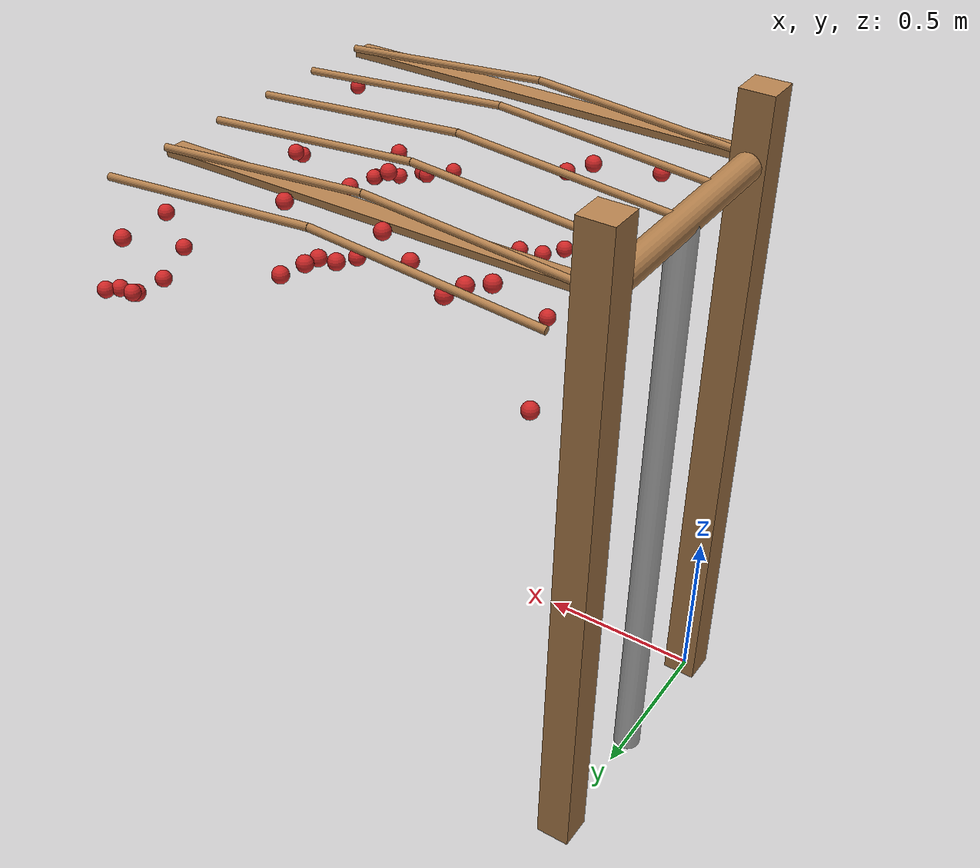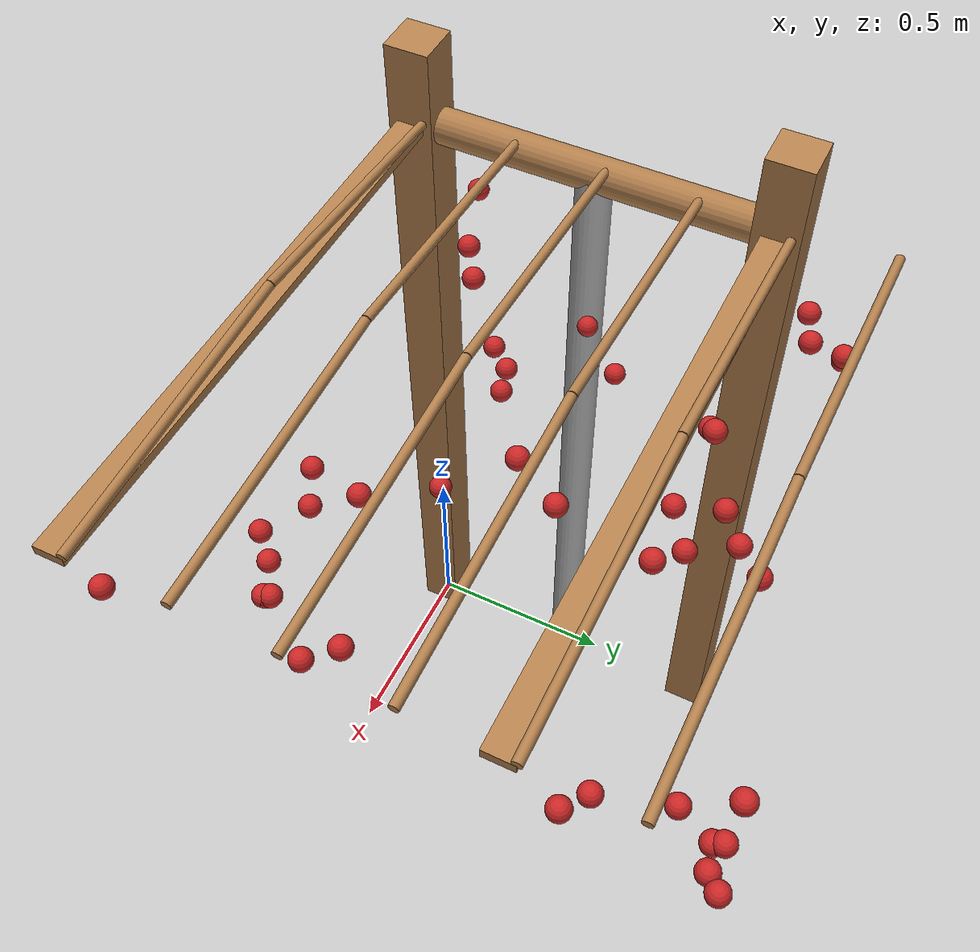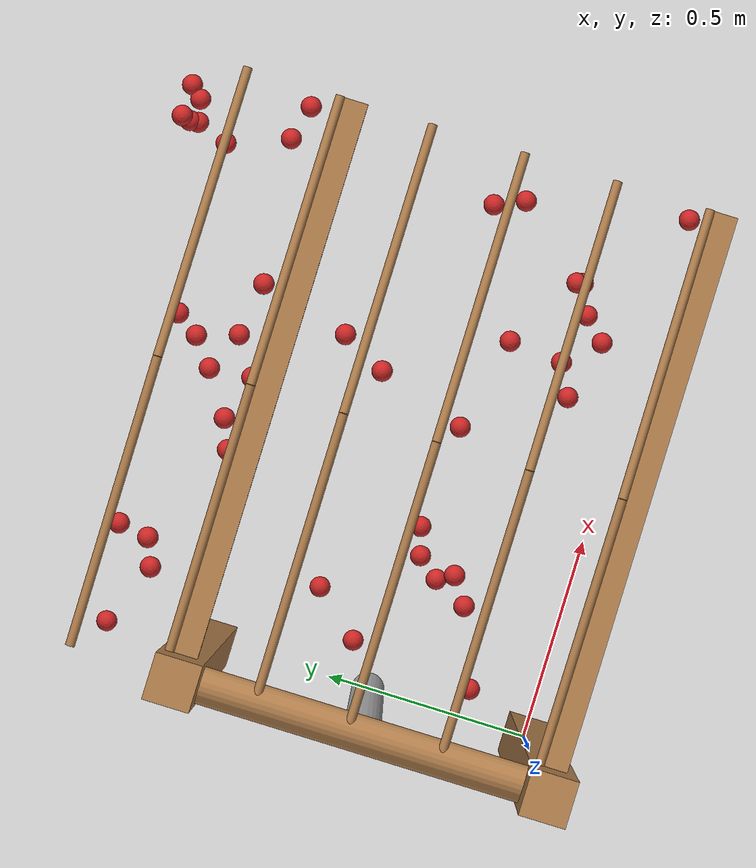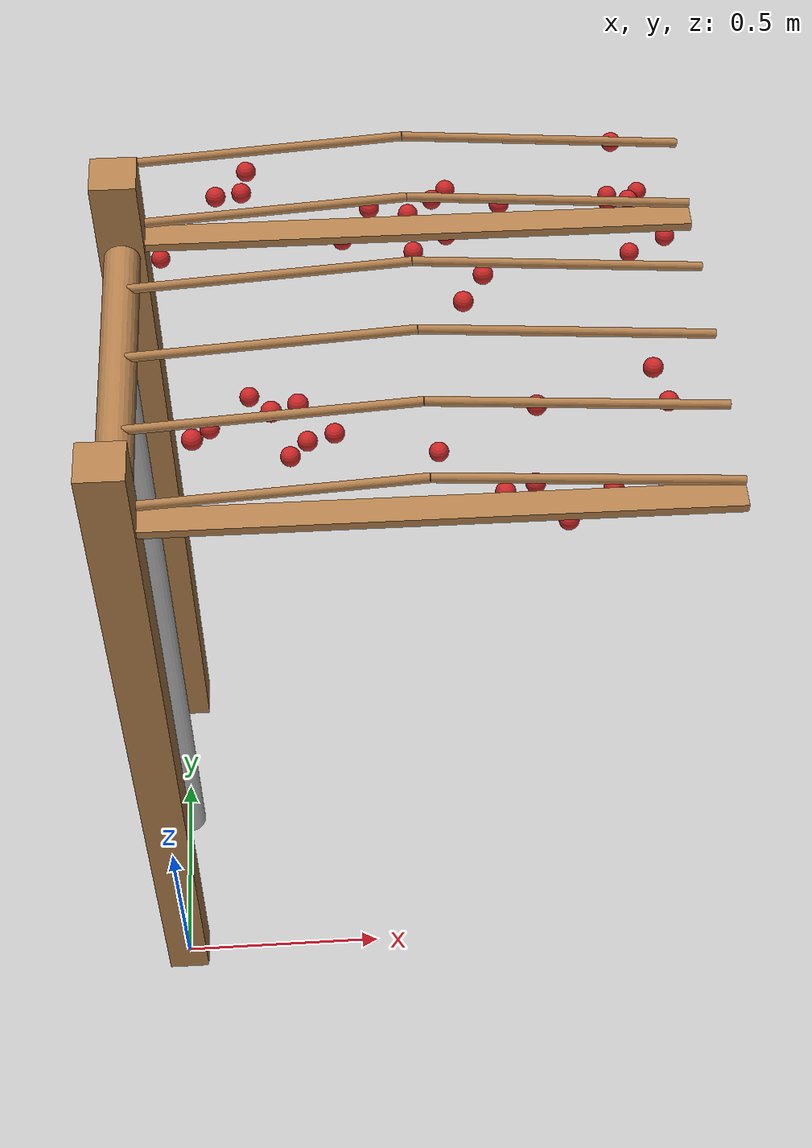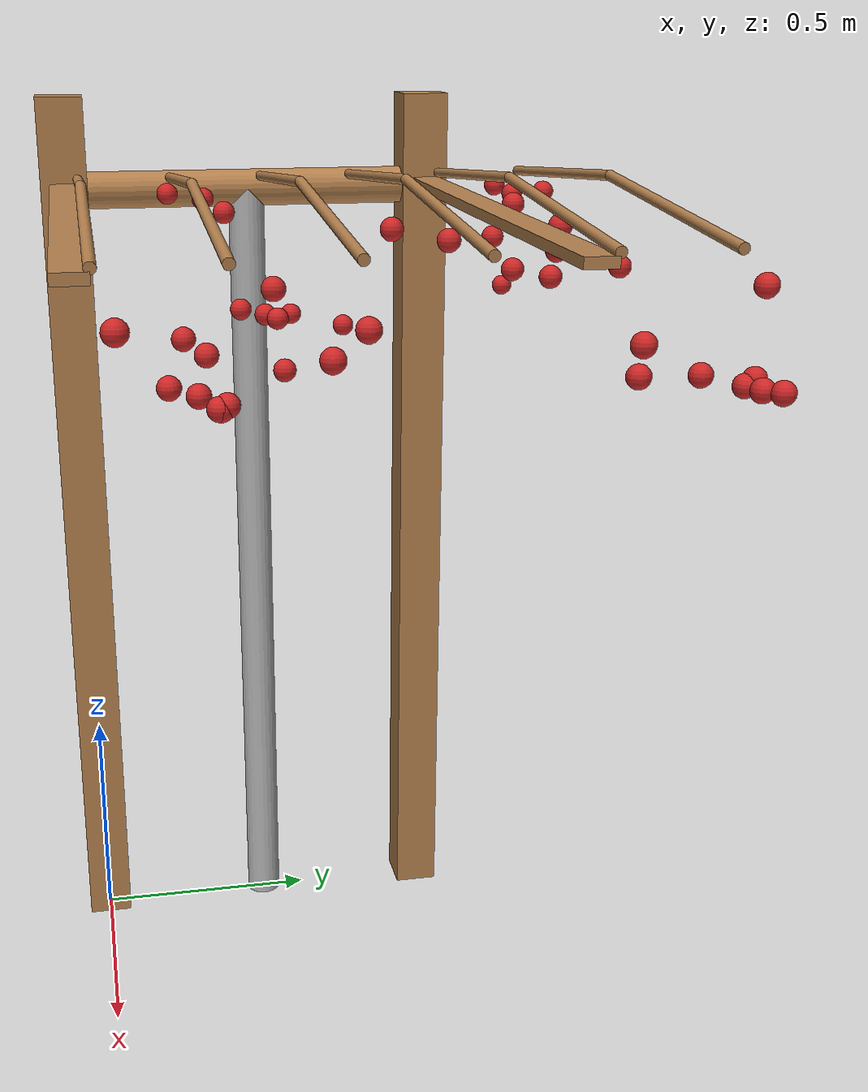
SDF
<sdf version="1.4">
 <model name="pergola">
  <include><name>post_0</name><uri>model://post</uri></include>
  <include><name>post_1</name><pose>0.0 0.8 0 0 0 0</pose><uri>model://post</uri></include>
  <link name="beam_0">
   <pose>0.625 0.0 1.81 0 0 0</pose>
   <collision name="collision"><geometry><box><size>1.25 0.06 0.02</size></box></geometry></collision>
   <visual name="visual">
    <geometry><box><size>1.25 0.06 0.02</size></box></geometry>
    <material><script><name>Gazebo/Wood</name></script></material>
   </visual>
   <inertial>
    <mass>5</mass>
    <inertia>
     <ixx>0.0016666666666666668</ixx>
     <ixy>0.0</ixy>
     <ixz>0.0</ixz>
     <iyy>0.6525416666666667</iyy>
     <iyz>0.0</iyz>
     <izz>0.6512083333333333</izz>
    </inertia>
   </inertial>
  </link>
  <link name="beam_1">
   <pose>0.625 0.8 1.81 0 0 0</pose>
   <collision name="collision"><geometry><box><size>1.25 0.06 0.02</size></box></geometry></collision>
   <visual name="visual">
    <geometry><box><size>1.25 0.06 0.02</size></box></geometry>
    <material><script><name>Gazebo/Wood</name></script></material>
   </visual>
   <inertial>
    <mass>5</mass>
    <inertia>
     <ixx>0.0016666666666666668</ixx>
     <ixy>0.0</ixy>
     <ixz>0.0</ixz>
     <iyy>0.6525416666666667</iyy>
     <iyz>0.0</iyz>
     <izz>0.6512083333333333</izz>
    </inertia>
   </inertial>
  </link>
  <include><name>tree_0</name><pose>0.0 0.4 0 0 0 0</pose><uri>model://tree_trunk</uri></include>
  <link name="baseBranch_0">
   <pose>0.0 0.4 1.8 1.5707963267948966 0 0</pose>
   <collision name="collision">
    <geometry><cylinder><radius>0.04</radius><length>0.74</length></cylinder></geometry>
   </collision>
   <visual name="visual">
    <geometry><cylinder><radius>0.04</radius><length>0.74</length></cylinder></geometry>
    <material><script><name>Gazebo/WoodFloor</name></script></material>
   </visual>
   <inertial>
    <mass>10</mass>
    <inertia>
     <ixx>0.4603333333333333</ixx>
     <ixy>0.0</ixy>
     <ixz>0.0</ixz>
     <iyy>0.4603333333333333</iyy>
     <iyz>0.0</iyz>
     <izz>0.008</izz>
    </inertia>
   </inertial>
  </link>
  <link name="vine_0">
   <pose>0.3125 0.03 1.85 0 1.4909663410826592 0</pose>
   <collision name="collision">
    <geometry><cylinder><radius>0.01</radius><length>0.6269968101992226</length></cylinder></geometry>
   </collision>
   <visual name="visual">
    <geometry><cylinder><radius>0.01</radius><length>0.6269968101992226</length></cylinder></geometry>
    <material><script><name>Gazebo/WoodFloor</name></script></material>
   </visual>
   <inertial>
    <mass>5</mass>
    <inertia>
     <ixx>0.1639270833333333</ixx>
     <ixy>0.0</ixy>
     <ixz>0.0</ixz>
     <iyy>0.1639270833333333</iyy>
     <iyz>0.0</iyz>
     <izz>0.00025</izz>
    </inertia>
   </inertial>
  </link>
  <link name="vine_1">
   <pose>0.9375 0.03 1.85 0 -1.4909663410826592 0</pose>
   <collision name="collision">
    <geometry><cylinder><radius>0.01</radius><length>0.6269968101992226</length></cylinder></geometry>
   </collision>
   <visual name="visual">
    <geometry><cylinder><radius>0.01</radius><length>0.6269968101992226</length></cylinder></geometry>
    <material><script><name>Gazebo/WoodFloor</name></script></material>
   </visual>
   <inertial>
    <mass>5</mass>
    <inertia>
     <ixx>0.1639270833333333</ixx>
     <ixy>0.0</ixy>
     <ixz>0.0</ixz>
     <iyy>0.1639270833333333</iyy>
     <iyz>0.0</iyz>
     <izz>0.00025</izz>
    </inertia>
   </inertial>
  </link>
  <link name="vine_2">
   <pose>0.3125 0.23 1.85 0 1.4909663410826592 0</pose>
   <collision name="collision">
    <geometry><cylinder><radius>0.01</radius><length>0.6269968101992226</length></cylinder></geometry>
   </collision>
   <visual name="visual">
    <geometry><cylinder><radius>0.01</radius><length>0.6269968101992226</length></cylinder></geometry>
    <material><script><name>Gazebo/WoodFloor</name></script></material>
   </visual>
   <inertial>
    <mass>5</mass>
    <inertia>
     <ixx>0.1639270833333333</ixx>
     <ixy>0.0</ixy>
     <ixz>0.0</ixz>
     <iyy>0.1639270833333333</iyy>
     <iyz>0.0</iyz>
     <izz>0.00025</izz>
    </inertia>
   </inertial>
  </link>
  <link name="vine_3">
   <pose>0.9375 0.23 1.85 0 -1.4909663410826592 0</pose>
   <collision name="collision">
    <geometry><cylinder><radius>0.01</radius><length>0.6269968101992226</length></cylinder></geometry>
   </collision>
   <visual name="visual">
    <geometry><cylinder><radius>0.01</radius><length>0.6269968101992226</length></cylinder></geometry>
    <material><script><name>Gazebo/WoodFloor</name></script></material>
   </visual>
   <inertial>
    <mass>5</mass>
    <inertia>
     <ixx>0.1639270833333333</ixx>
     <ixy>0.0</ixy>
     <ixz>0.0</ixz>
     <iyy>0.1639270833333333</iyy>
     <iyz>0.0</iyz>
     <izz>0.00025</izz>
    </inertia>
   </inertial>
  </link>
  <link name="vine_4">
   <pose>0.3125 0.43000000000000005 1.85 0 1.4909663410826592 0</pose>
   <collision name="collision">
    <geometry><cylinder><radius>0.01</radius><length>0.6269968101992226</length></cylinder></geometry>
   </collision>
   <visual name="visual">
    <geometry><cylinder><radius>0.01</radius><length>0.6269968101992226</length></cylinder></geometry>
    <material><script><name>Gazebo/WoodFloor</name></script></material>
   </visual>
   <inertial>
    <mass>5</mass>
    <inertia>
     <ixx>0.1639270833333333</ixx>
     <ixy>0.0</ixy>
     <ixz>0.0</ixz>
     <iyy>0.1639270833333333</iyy>
     <iyz>0.0</iyz>
     <izz>0.00025</izz>
    </inertia>
   </inertial>
  </link>
  <link name="vine_5">
   <pose>0.9375 0.43000000000000005 1.85 0 -1.4909663410826592 0</pose>
   <collision name="collision">
    <geometry><cylinder><radius>0.01</radius><length>0.6269968101992226</length></cylinder></geometry>
   </collision>
   <visual name="visual">
    <geometry><cylinder><radius>0.01</radius><length>0.6269968101992226</length></cylinder></geometry>
    <material><script><name>Gazebo/WoodFloor</name></script></material>
   </visual>
   <inertial>
    <mass>5</mass>
    <inertia>
     <ixx>0.1639270833333333</ixx>
     <ixy>0.0</ixy>
     <ixz>0.0</ixz>
     <iyy>0.1639270833333333</iyy>
     <iyz>0.0</iyz>
     <izz>0.00025</izz>
    </inertia>
   </inertial>
  </link>
  <link name="vine_6">
   <pose>0.3125 0.6300000000000001 1.85 0 1.4909663410826592 0</pose>
   <collision name="collision">
    <geometry><cylinder><radius>0.01</radius><length>0.6269968101992226</length></cylinder></geometry>
   </collision>
   <visual name="visual">
    <geometry><cylinder><radius>0.01</radius><length>0.6269968101992226</length></cylinder></geometry>
    <material><script><name>Gazebo/WoodFloor</name></script></material>
   </visual>
   <inertial>
    <mass>5</mass>
    <inertia>
     <ixx>0.1639270833333333</ixx>
     <ixy>0.0</ixy>
     <ixz>0.0</ixz>
     <iyy>0.1639270833333333</iyy>
     <iyz>0.0</iyz>
     <izz>0.00025</izz>
    </inertia>
   </inertial>
  </link>
  <link name="vine_7">
   <pose>0.9375 0.6300000000000001 1.85 0 -1.4909663410826592 0</pose>
   <collision name="collision">
    <geometry><cylinder><radius>0.01</radius><length>0.6269968101992226</length></cylinder></geometry>
   </collision>
   <visual name="visual">
    <geometry><cylinder><radius>0.01</radius><length>0.6269968101992226</length></cylinder></geometry>
    <material><script><name>Gazebo/WoodFloor</name></script></material>
   </visual>
   <inertial>
    <mass>5</mass>
    <inertia>
     <ixx>0.1639270833333333</ixx>
     <ixy>0.0</ixy>
     <ixz>0.0</ixz>
     <iyy>0.1639270833333333</iyy>
     <iyz>0.0</iyz>
     <izz>0.00025</izz>
    </inertia>
   </inertial>
  </link>
  <link name="vine_8">
   <pose>0.3125 0.8300000000000001 1.85 0 1.4909663410826592 0</pose>
   <collision name="collision">
    <geometry><cylinder><radius>0.01</radius><length>0.6269968101992226</length></cylinder></geometry>
   </collision>
   <visual name="visual">
    <geometry><cylinder><radius>0.01</radius><length>0.6269968101992226</length></cylinder></geometry>
    <material><script><name>Gazebo/WoodFloor</name></script></material>
   </visual>
   <inertial>
    <mass>5</mass>
    <inertia>
     <ixx>0.1639270833333333</ixx>
     <ixy>0.0</ixy>
     <ixz>0.0</ixz>
     <iyy>0.1639270833333333</iyy>
     <iyz>0.0</iyz>
     <izz>0.00025</izz>
    </inertia>
   </inertial>
  </link>
  <link name="vine_9">
   <pose>0.9375 0.8300000000000001 1.85 0 -1.4909663410826592 0</pose>
   <collision name="collision">
    <geometry><cylinder><radius>0.01</radius><length>0.6269968101992226</length></cylinder></geometry>
   </collision>
   <visual name="visual">
    <geometry><cylinder><radius>0.01</radius><length>0.6269968101992226</length></cylinder></geometry>
    <material><script><name>Gazebo/WoodFloor</name></script></material>
   </visual>
   <inertial>
    <mass>5</mass>
    <inertia>
     <ixx>0.1639270833333333</ixx>
     <ixy>0.0</ixy>
     <ixz>0.0</ixz>
     <iyy>0.1639270833333333</iyy>
     <iyz>0.0</iyz>
     <izz>0.00025</izz>
    </inertia>
   </inertial>
  </link>
  <link name="vine_10">
   <pose>0.3125 1.03 1.85 0 1.4909663410826592 0</pose>
   <collision name="collision">
    <geometry><cylinder><radius>0.01</radius><length>0.6269968101992226</length></cylinder></geometry>
   </collision>
   <visual name="visual">
    <geometry><cylinder><radius>0.01</radius><length>0.6269968101992226</length></cylinder></geometry>
    <material><script><name>Gazebo/WoodFloor</name></script></material>
   </visual>
   <inertial>
    <mass>5</mass>
    <inertia>
     <ixx>0.1639270833333333</ixx>
     <ixy>0.0</ixy>
     <ixz>0.0</ixz>
     <iyy>0.1639270833333333</iyy>
     <iyz>0.0</iyz>
     <izz>0.00025</izz>
    </inertia>
   </inertial>
  </link>
  <link name="vine_11">
   <pose>0.9375 1.03 1.85 0 -1.4909663410826592 0</pose>
   <collision name="collision">
    <geometry><cylinder><radius>0.01</radius><length>0.6269968101992226</length></cylinder></geometry>
   </collision>
   <visual name="visual">
    <geometry><cylinder><radius>0.01</radius><length>0.6269968101992226</length></cylinder></geometry>
    <material><script><name>Gazebo/WoodFloor</name></script></material>
   </visual>
   <inertial>
    <mass>5</mass>
    <inertia>
     <ixx>0.1639270833333333</ixx>
     <ixy>0.0</ixy>
     <ixz>0.0</ixz>
     <iyy>0.1639270833333333</iyy>
     <iyz>0.0</iyz>
     <izz>0.00025</izz>
    </inertia>
   </inertial>
  </link>
  <link name="fruit_5">
   <pose>0.1707817436711813 0.4731535679665953 1.5445469645437917 0 0 0</pose>
   <collision name="fruit_collision_5"><geometry><sphere><radius>0.022</radius></sphere></geometry></collision>
   <visual name="visual">
    <geometry><sphere><radius>0.022</radius></sphere></geometry>
    <material><script><name>Gazebo/Red</name></script></material>
   </visual>
   <inertial>
    <mass>0.05</mass>
    <inertia>
     <ixx>9.679999999999999e-06</ixx>
     <ixy>0.0</ixy>
     <ixz>0.0</ixz>
     <iyy>9.679999999999999e-06</iyy>
     <iyz>0.0</iyz>
     <izz>9.679999999999999e-06</izz>
    </inertia>
   </inertial>
   <sensor name="fruit_contact_5" type="contact">
    <plugin name="contact_plugin_5" filename="libcontact_plugin.so"/>
    <contact><collision>fruit_collision_5</collision><topic>fruit_contact_topic_5</topic></contact>
   </sensor>
  </link>
  <link name="fruit_10">
   <pose>0.6332576587366734 0.9271785815421214 1.7356084029133274 0 0 0</pose>
   <collision name="fruit_collision_10"><geometry><sphere><radius>0.022</radius></sphere></geometry></collision>
   <visual name="visual">
    <geometry><sphere><radius>0.022</radius></sphere></geometry>
    <material><script><name>Gazebo/Red</name></script></material>
   </visual>
   <inertial>
    <mass>0.05</mass>
    <inertia>
     <ixx>9.679999999999999e-06</ixx>
     <ixy>0.0</ixy>
     <ixz>0.0</ixz>
     <iyy>9.679999999999999e-06</iyy>
     <iyz>0.0</iyz>
     <izz>9.679999999999999e-06</izz>
    </inertia>
   </inertial>
   <sensor name="fruit_contact_10" type="contact">
    <plugin name="contact_plugin_10" filename="libcontact_plugin.so"/>
    <contact><collision>fruit_collision_10</collision><topic>fruit_contact_topic_10</topic></contact>
   </sensor>
  </link>
  <link name="fruit_29">
   <pose>0.3168533076749783 0.2753258326980976 1.8124204976361395 0 0 0</pose>
   <collision name="fruit_collision_29"><geometry><sphere><radius>0.022</radius></sphere></geometry></collision>
   <visual name="visual">
    <geometry><sphere><radius>0.022</radius></sphere></geometry>
    <material><script><name>Gazebo/Red</name></script></material>
   </visual>
   <inertial>
    <mass>0.05</mass>
    <inertia>
     <ixx>9.679999999999999e-06</ixx>
     <ixy>0.0</ixy>
     <ixz>0.0</ixz>
     <iyy>9.679999999999999e-06</iyy>
     <iyz>0.0</iyz>
     <izz>9.679999999999999e-06</izz>
    </inertia>
   </inertial>
   <sensor name="fruit_contact_29" type="contact">
    <plugin name="contact_plugin_29" filename="libcontact_plugin.so"/>
    <contact><collision>fruit_collision_29</collision><topic>fruit_contact_topic_29</topic></contact>
   </sensor>
  </link>
  <link name="fruit_39">
   <pose>1.1355575653241217 0.46005277433909364 1.6968575960692807 0 0 0</pose>
   <collision name="fruit_collision_39"><geometry><sphere><radius>0.022</radius></sphere></geometry></collision>
   <visual name="visual">
    <geometry><sphere><radius>0.022</radius></sphere></geometry>
    <material><script><name>Gazebo/Red</name></script></material>
   </visual>
   <inertial>
    <mass>0.05</mass>
    <inertia>
     <ixx>9.679999999999999e-06</ixx>
     <ixy>0.0</ixy>
     <ixz>0.0</ixz>
     <iyy>9.679999999999999e-06</iyy>
     <iyz>0.0</iyz>
     <izz>9.679999999999999e-06</izz>
    </inertia>
   </inertial>
   <sensor name="fruit_contact_39" type="contact">
    <plugin name="contact_plugin_39" filename="libcontact_plugin.so"/>
    <contact><collision>fruit_collision_39</collision><topic>fruit_contact_topic_39</topic></contact>
   </sensor>
  </link>
  <link name="fruit_40">
   <pose>0.7324153318432257 0.5808219271677135 1.798291851647477 0 0 0</pose>
   <collision name="fruit_collision_40"><geometry><sphere><radius>0.022</radius></sphere></geometry></collision>
   <visual name="visual">
    <geometry><sphere><radius>0.022</radius></sphere></geometry>
    <material><script><name>Gazebo/Red</name></script></material>
   </visual>
   <inertial>
    <mass>0.05</mass>
    <inertia>
     <ixx>9.679999999999999e-06</ixx>
     <ixy>0.0</ixy>
     <ixz>0.0</ixz>
     <iyy>9.679999999999999e-06</iyy>
     <iyz>0.0</iyz>
     <izz>9.679999999999999e-06</izz>
    </inertia>
   </inertial>
   <sensor name="fruit_contact_40" type="contact">
    <plugin name="contact_plugin_40" filename="libcontact_plugin.so"/>
    <contact><collision>fruit_collision_40</collision><topic>fruit_contact_topic_40</topic></contact>
   </sensor>
  </link>
  <link name="fruit_59">
   <pose>0.2039706118237588 0.9193554298494175 1.8159032775108537 0 0 0</pose>
   <collision name="fruit_collision_59"><geometry><sphere><radius>0.022</radius></sphere></geometry></collision>
   <visual name="visual">
    <geometry><sphere><radius>0.022</radius></sphere></geometry>
    <material><script><name>Gazebo/Red</name></script></material>
   </visual>
   <inertial>
    <mass>0.05</mass>
    <inertia>
     <ixx>9.679999999999999e-06</ixx>
     <ixy>0.0</ixy>
     <ixz>0.0</ixz>
     <iyy>9.679999999999999e-06</iyy>
     <iyz>0.0</iyz>
     <izz>9.679999999999999e-06</izz>
    </inertia>
   </inertial>
   <sensor name="fruit_contact_59" type="contact">
    <plugin name="contact_plugin_59" filename="libcontact_plugin.so"/>
    <contact><collision>fruit_collision_59</collision><topic>fruit_contact_topic_59</topic></contact>
   </sensor>
  </link>
  <link name="fruit_73">
   <pose>0.15596058516285088 0.21432575772232704 1.8065081721348228 0 0 0</pose>
   <collision name="fruit_collision_73"><geometry><sphere><radius>0.022</radius></sphere></geometry></collision>
   <visual name="visual">
    <geometry><sphere><radius>0.022</radius></sphere></geometry>
    <material><script><name>Gazebo/Red</name></script></material>
   </visual>
   <inertial>
    <mass>0.05</mass>
    <inertia>
     <ixx>9.679999999999999e-06</ixx>
     <ixy>0.0</ixy>
     <ixz>0.0</ixz>
     <iyy>9.679999999999999e-06</iyy>
     <iyz>0.0</iyz>
     <izz>9.679999999999999e-06</izz>
    </inertia>
   </inertial>
   <sensor name="fruit_contact_73" type="contact">
    <plugin name="contact_plugin_73" filename="libcontact_plugin.so"/>
    <contact><collision>fruit_collision_73</collision><topic>fruit_contact_topic_73</topic></contact>
   </sensor>
  </link>
  <link name="fruit_119">
   <pose>1.1477046238757647 0.9101591536227673 1.6049553665391931 0 0 0</pose>
   <collision name="fruit_collision_119"><geometry><sphere><radius>0.022</radius></sphere></geometry></collision>
   <visual name="visual">
    <geometry><sphere><radius>0.022</radius></sphere></geometry>
    <material><script><name>Gazebo/Red</name></script></material>
   </visual>
   <inertial>
    <mass>0.05</mass>
    <inertia>
     <ixx>9.679999999999999e-06</ixx>
     <ixy>0.0</ixy>
     <ixz>0.0</ixz>
     <iyy>9.679999999999999e-06</iyy>
     <iyz>0.0</iyz>
     <izz>9.679999999999999e-06</izz>
    </inertia>
   </inertial>
   <sensor name="fruit_contact_119" type="contact">
    <plugin name="contact_plugin_119" filename="libcontact_plugin.so"/>
    <contact><collision>fruit_collision_119</collision><topic>fruit_contact_topic_119</topic></contact>
   </sensor>
  </link>
  <link name="fruit_121">
   <pose>0.6710022559961407 0.3888139581941285 1.5322242792933252 0 0 0</pose>
   <collision name="fruit_collision_121"><geometry><sphere><radius>0.022</radius></sphere></geometry></collision>
   <visual name="visual">
    <geometry><sphere><radius>0.022</radius></sphere></geometry>
    <material><script><name>Gazebo/Red</name></script></material>
   </visual>
   <inertial>
    <mass>0.05</mass>
    <inertia>
     <ixx>9.679999999999999e-06</ixx>
     <ixy>0.0</ixy>
     <ixz>0.0</ixz>
     <iyy>9.679999999999999e-06</iyy>
     <iyz>0.0</iyz>
     <izz>9.679999999999999e-06</izz>
    </inertia>
   </inertial>
   <sensor name="fruit_contact_121" type="contact">
    <plugin name="contact_plugin_121" filename="libcontact_plugin.so"/>
    <contact><collision>fruit_collision_121</collision><topic>fruit_contact_topic_121</topic></contact>
   </sensor>
  </link>
  <link name="fruit_135">
   <pose>0.8715903221568378 0.343914989573875 1.7212491495996867 0 0 0</pose>
   <collision name="fruit_collision_135"><geometry><sphere><radius>0.022</radius></sphere></geometry></collision>
   <visual name="visual">
    <geometry><sphere><radius>0.022</radius></sphere></geometry>
    <material><script><name>Gazebo/Red</name></script></material>
   </visual>
   <inertial>
    <mass>0.05</mass>
    <inertia>
     <ixx>9.679999999999999e-06</ixx>
     <ixy>0.0</ixy>
     <ixz>0.0</ixz>
     <iyy>9.679999999999999e-06</iyy>
     <iyz>0.0</iyz>
     <izz>9.679999999999999e-06</izz>
    </inertia>
   </inertial>
   <sensor name="fruit_contact_135" type="contact">
    <plugin name="contact_plugin_135" filename="libcontact_plugin.so"/>
    <contact><collision>fruit_collision_135</collision><topic>fruit_contact_topic_135</topic></contact>
   </sensor>
  </link>
  <link name="fruit_140">
   <pose>1.2203867815258627 0.8870780342889328 1.6737760473049563 0 0 0</pose>
   <collision name="fruit_collision_140"><geometry><sphere><radius>0.022</radius></sphere></geometry></collision>
   <visual name="visual">
    <geometry><sphere><radius>0.022</radius></sphere></geometry>
    <material><script><name>Gazebo/Red</name></script></material>
   </visual>
   <inertial>
    <mass>0.05</mass>
    <inertia>
     <ixx>9.679999999999999e-06</ixx>
     <ixy>0.0</ixy>
     <ixz>0.0</ixz>
     <iyy>9.679999999999999e-06</iyy>
     <iyz>0.0</iyz>
     <izz>9.679999999999999e-06</izz>
    </inertia>
   </inertial>
   <sensor name="fruit_contact_140" type="contact">
    <plugin name="contact_plugin_140" filename="libcontact_plugin.so"/>
    <contact><collision>fruit_collision_140</collision><topic>fruit_contact_topic_140</topic></contact>
   </sensor>
  </link>
  <link name="fruit_147">
   <pose>0.48164694977848554 0.8405772228152197 1.7444852395901955 0 0 0</pose>
   <collision name="fruit_collision_147"><geometry><sphere><radius>0.022</radius></sphere></geometry></collision>
   <visual name="visual">
    <geometry><sphere><radius>0.022</radius></sphere></geometry>
    <material><script><name>Gazebo/Red</name></script></material>
   </visual>
   <inertial>
    <mass>0.05</mass>
    <inertia>
     <ixx>9.679999999999999e-06</ixx>
     <ixy>0.0</ixy>
     <ixz>0.0</ixz>
     <iyy>9.679999999999999e-06</iyy>
     <iyz>0.0</iyz>
     <izz>9.679999999999999e-06</izz>
    </inertia>
   </inertial>
   <sensor name="fruit_contact_147" type="contact">
    <plugin name="contact_plugin_147" filename="libcontact_plugin.so"/>
    <contact><collision>fruit_collision_147</collision><topic>fruit_contact_topic_147</topic></contact>
   </sensor>
  </link>
  <link name="fruit_158">
   <pose>1.1198200772964726 1.135760847248829 1.7432563470359226 0 0 0</pose>
   <collision name="fruit_collision_158"><geometry><sphere><radius>0.022</radius></sphere></geometry></collision>
   <visual name="visual">
    <geometry><sphere><radius>0.022</radius></sphere></geometry>
    <material><script><name>Gazebo/Red</name></script></material>
   </visual>
   <inertial>
    <mass>0.05</mass>
    <inertia>
     <ixx>9.679999999999999e-06</ixx>
     <ixy>0.0</ixy>
     <ixz>0.0</ixz>
     <iyy>9.679999999999999e-06</iyy>
     <iyz>0.0</iyz>
     <izz>9.679999999999999e-06</izz>
    </inertia>
   </inertial>
   <sensor name="fruit_contact_158" type="contact">
    <plugin name="contact_plugin_158" filename="libcontact_plugin.so"/>
    <contact><collision>fruit_collision_158</collision><topic>fruit_contact_topic_158</topic></contact>
   </sensor>
  </link>
  <link name="fruit_166">
   <pose>0.7965862019879061 0.1913778665107756 1.6245318593907465 0 0 0</pose>
   <collision name="fruit_collision_166"><geometry><sphere><radius>0.022</radius></sphere></geometry></collision>
   <visual name="visual">
    <geometry><sphere><radius>0.022</radius></sphere></geometry>
    <material><script><name>Gazebo/Red</name></script></material>
   </visual>
   <inertial>
    <mass>0.05</mass>
    <inertia>
     <ixx>9.679999999999999e-06</ixx>
     <ixy>0.0</ixy>
     <ixz>0.0</ixz>
     <iyy>9.679999999999999e-06</iyy>
     <iyz>0.0</iyz>
     <izz>9.679999999999999e-06</izz>
    </inertia>
   </inertial>
   <sensor name="fruit_contact_166" type="contact">
    <plugin name="contact_plugin_166" filename="libcontact_plugin.so"/>
    <contact><collision>fruit_collision_166</collision><topic>fruit_contact_topic_166</topic></contact>
   </sensor>
  </link>
  <link name="fruit_177">
   <pose>1.1649981948507868 0.39739523942050314 1.656671707109156 0 0 0</pose>
   <collision name="fruit_collision_177"><geometry><sphere><radius>0.022</radius></sphere></geometry></collision>
   <visual name="visual">
    <geometry><sphere><radius>0.022</radius></sphere></geometry>
    <material><script><name>Gazebo/Red</name></script></material>
   </visual>
   <inertial>
    <mass>0.05</mass>
    <inertia>
     <ixx>9.679999999999999e-06</ixx>
     <ixy>0.0</ixy>
     <ixz>0.0</ixz>
     <iyy>9.679999999999999e-06</iyy>
     <iyz>0.0</iyz>
     <izz>9.679999999999999e-06</izz>
    </inertia>
   </inertial>
   <sensor name="fruit_contact_177" type="contact">
    <plugin name="contact_plugin_177" filename="libcontact_plugin.so"/>
    <contact><collision>fruit_collision_177</collision><topic>fruit_contact_topic_177</topic></contact>
   </sensor>
  </link>
  <link name="fruit_229">
   <pose>0.6408962163141585 0.8378737156477016 1.7039845979660437 0 0 0</pose>
   <collision name="fruit_collision_229"><geometry><sphere><radius>0.022</radius></sphere></geometry></collision>
   <visual name="visual">
    <geometry><sphere><radius>0.022</radius></sphere></geometry>
    <material><script><name>Gazebo/Red</name></script></material>
   </visual>
   <inertial>
    <mass>0.05</mass>
    <inertia>
     <ixx>9.679999999999999e-06</ixx>
     <ixy>0.0</ixy>
     <ixz>0.0</ixz>
     <iyy>9.679999999999999e-06</iyy>
     <iyz>0.0</iyz>
     <izz>9.679999999999999e-06</izz>
    </inertia>
   </inertial>
   <sensor name="fruit_contact_229" type="contact">
    <plugin name="contact_plugin_229" filename="libcontact_plugin.so"/>
    <contact><collision>fruit_collision_229</collision><topic>fruit_contact_topic_229</topic></contact>
   </sensor>
  </link>
  <link name="fruit_230">
   <pose>1.223251628704814 0.06106475143943619 1.7253947456740524 0 0 0</pose>
   <collision name="fruit_collision_230"><geometry><sphere><radius>0.022</radius></sphere></geometry></collision>
   <visual name="visual">
    <geometry><sphere><radius>0.022</radius></sphere></geometry>
    <material><script><name>Gazebo/Red</name></script></material>
   </visual>
   <inertial>
    <mass>0.05</mass>
    <inertia>
     <ixx>9.679999999999999e-06</ixx>
     <ixy>0.0</ixy>
     <ixz>0.0</ixz>
     <iyy>9.679999999999999e-06</iyy>
     <iyz>0.0</iyz>
     <izz>9.679999999999999e-06</izz>
    </inertia>
   </inertial>
   <sensor name="fruit_contact_230" type="contact">
    <plugin name="contact_plugin_230" filename="libcontact_plugin.so"/>
    <contact><collision>fruit_collision_230</collision><topic>fruit_contact_topic_230</topic></contact>
   </sensor>
  </link>
  <link name="fruit_233">
   <pose>0.34758413907575525 0.3435209617048918 1.590643378248611 0 0 0</pose>
   <collision name="fruit_collision_233"><geometry><sphere><radius>0.022</radius></sphere></geometry></collision>
   <visual name="visual">
    <geometry><sphere><radius>0.022</radius></sphere></geometry>
    <material><script><name>Gazebo/Red</name></script></material>
   </visual>
   <inertial>
    <mass>0.05</mass>
    <inertia>
     <ixx>9.679999999999999e-06</ixx>
     <ixy>0.0</ixy>
     <ixz>0.0</ixz>
     <iyy>9.679999999999999e-06</iyy>
     <iyz>0.0</iyz>
     <izz>9.679999999999999e-06</izz>
    </inertia>
   </inertial>
   <sensor name="fruit_contact_233" type="contact">
    <plugin name="contact_plugin_233" filename="libcontact_plugin.so"/>
    <contact><collision>fruit_collision_233</collision><topic>fruit_contact_topic_233</topic></contact>
   </sensor>
  </link>
  <link name="fruit_264">
   <pose>0.8325578600179381 0.8674855540170432 1.8099655402320258 0 0 0</pose>
   <collision name="fruit_collision_264"><geometry><sphere><radius>0.022</radius></sphere></geometry></collision>
   <visual name="visual">
    <geometry><sphere><radius>0.022</radius></sphere></geometry>
    <material><script><name>Gazebo/Red</name></script></material>
   </visual>
   <inertial>
    <mass>0.05</mass>
    <inertia>
     <ixx>9.679999999999999e-06</ixx>
     <ixy>0.0</ixy>
     <ixz>0.0</ixz>
     <iyy>9.679999999999999e-06</iyy>
     <iyz>0.0</iyz>
     <izz>9.679999999999999e-06</izz>
    </inertia>
   </inertial>
   <sensor name="fruit_contact_264" type="contact">
    <plugin name="contact_plugin_264" filename="libcontact_plugin.so"/>
    <contact><collision>fruit_collision_264</collision><topic>fruit_contact_topic_264</topic></contact>
   </sensor>
  </link>
  <link name="fruit_301">
   <pose>1.0989307107994428 1.0399770657276481 1.5910850543116544 0 0 0</pose>
   <collision name="fruit_collision_301"><geometry><sphere><radius>0.022</radius></sphere></geometry></collision>
   <visual name="visual">
    <geometry><sphere><radius>0.022</radius></sphere></geometry>
    <material><script><name>Gazebo/Red</name></script></material>
   </visual>
   <inertial>
    <mass>0.05</mass>
    <inertia>
     <ixx>9.679999999999999e-06</ixx>
     <ixy>0.0</ixy>
     <ixz>0.0</ixz>
     <iyy>9.679999999999999e-06</iyy>
     <iyz>0.0</iyz>
     <izz>9.679999999999999e-06</izz>
    </inertia>
   </inertial>
   <sensor name="fruit_contact_301" type="contact">
    <plugin name="contact_plugin_301" filename="libcontact_plugin.so"/>
    <contact><collision>fruit_collision_301</collision><topic>fruit_contact_topic_301</topic></contact>
   </sensor>
  </link>
  <link name="fruit_306">
   <pose>0.05765983869443275 0.984653803730807 1.57273148487393 0 0 0</pose>
   <collision name="fruit_collision_306"><geometry><sphere><radius>0.022</radius></sphere></geometry></collision>
   <visual name="visual">
    <geometry><sphere><radius>0.022</radius></sphere></geometry>
    <material><script><name>Gazebo/Red</name></script></material>
   </visual>
   <inertial>
    <mass>0.05</mass>
    <inertia>
     <ixx>9.679999999999999e-06</ixx>
     <ixy>0.0</ixy>
     <ixz>0.0</ixz>
     <iyy>9.679999999999999e-06</iyy>
     <iyz>0.0</iyz>
     <izz>9.679999999999999e-06</izz>
    </inertia>
   </inertial>
   <sensor name="fruit_contact_306" type="contact">
    <plugin name="contact_plugin_306" filename="libcontact_plugin.so"/>
    <contact><collision>fruit_collision_306</collision><topic>fruit_contact_topic_306</topic></contact>
   </sensor>
  </link>
  <link name="fruit_336">
   <pose>0.5432665154094458 0.8634317645506935 1.8156251401936745 0 0 0</pose>
   <collision name="fruit_collision_336"><geometry><sphere><radius>0.022</radius></sphere></geometry></collision>
   <visual name="visual">
    <geometry><sphere><radius>0.022</radius></sphere></geometry>
    <material><script><name>Gazebo/Red</name></script></material>
   </visual>
   <inertial>
    <mass>0.05</mass>
    <inertia>
     <ixx>9.679999999999999e-06</ixx>
     <ixy>0.0</ixy>
     <ixz>0.0</ixz>
     <iyy>9.679999999999999e-06</iyy>
     <iyz>0.0</iyz>
     <izz>9.679999999999999e-06</izz>
    </inertia>
   </inertial>
   <sensor name="fruit_contact_336" type="contact">
    <plugin name="contact_plugin_336" filename="libcontact_plugin.so"/>
    <contact><collision>fruit_collision_336</collision><topic>fruit_contact_topic_336</topic></contact>
   </sensor>
  </link>
  <link name="fruit_343">
   <pose>0.9296311897703757 0.15428986803654238 1.568506738227985 0 0 0</pose>
   <collision name="fruit_collision_343"><geometry><sphere><radius>0.022</radius></sphere></geometry></collision>
   <visual name="visual">
    <geometry><sphere><radius>0.022</radius></sphere></geometry>
    <material><script><name>Gazebo/Red</name></script></material>
   </visual>
   <inertial>
    <mass>0.05</mass>
    <inertia>
     <ixx>9.679999999999999e-06</ixx>
     <ixy>0.0</ixy>
     <ixz>0.0</ixz>
     <iyy>9.679999999999999e-06</iyy>
     <iyz>0.0</iyz>
     <izz>9.679999999999999e-06</izz>
    </inertia>
   </inertial>
   <sensor name="fruit_contact_343" type="contact">
    <plugin name="contact_plugin_343" filename="libcontact_plugin.so"/>
    <contact><collision>fruit_collision_343</collision><topic>fruit_contact_topic_343</topic></contact>
   </sensor>
  </link>
  <link name="fruit_423">
   <pose>0.7186320292056887 0.8895710612113702 1.7008428869071706 0 0 0</pose>
   <collision name="fruit_collision_423"><geometry><sphere><radius>0.022</radius></sphere></geometry></collision>
   <visual name="visual">
    <geometry><sphere><radius>0.022</radius></sphere></geometry>
    <material><script><name>Gazebo/Red</name></script></material>
   </visual>
   <inertial>
    <mass>0.05</mass>
    <inertia>
     <ixx>9.679999999999999e-06</ixx>
     <ixy>0.0</ixy>
     <ixz>0.0</ixz>
     <iyy>9.679999999999999e-06</iyy>
     <iyz>0.0</iyz>
     <izz>9.679999999999999e-06</izz>
    </inertia>
   </inertial>
   <sensor name="fruit_contact_423" type="contact">
    <plugin name="contact_plugin_423" filename="libcontact_plugin.so"/>
    <contact><collision>fruit_collision_423</collision><topic>fruit_contact_topic_423</topic></contact>
   </sensor>
  </link>
  <link name="fruit_464">
   <pose>1.122448982026548 1.1271542392777036 1.5857686260161734 0 0 0</pose>
   <collision name="fruit_collision_464"><geometry><sphere><radius>0.022</radius></sphere></geometry></collision>
   <visual name="visual">
    <geometry><sphere><radius>0.022</radius></sphere></geometry>
    <material><script><name>Gazebo/Red</name></script></material>
   </visual>
   <inertial>
    <mass>0.05</mass>
    <inertia>
     <ixx>9.679999999999999e-06</ixx>
     <ixy>0.0</ixy>
     <ixz>0.0</ixz>
     <iyy>9.679999999999999e-06</iyy>
     <iyz>0.0</iyz>
     <izz>9.679999999999999e-06</izz>
    </inertia>
   </inertial>
   <sensor name="fruit_contact_464" type="contact">
    <plugin name="contact_plugin_464" filename="libcontact_plugin.so"/>
    <contact><collision>fruit_collision_464</collision><topic>fruit_contact_topic_464</topic></contact>
   </sensor>
  </link>
  <link name="fruit_465">
   <pose>0.6907477026441445 0.9733367566040145 1.7339476182010614 0 0 0</pose>
   <collision name="fruit_collision_465"><geometry><sphere><radius>0.022</radius></sphere></geometry></collision>
   <visual name="visual">
    <geometry><sphere><radius>0.022</radius></sphere></geometry>
    <material><script><name>Gazebo/Red</name></script></material>
   </visual>
   <inertial>
    <mass>0.05</mass>
    <inertia>
     <ixx>9.679999999999999e-06</ixx>
     <ixy>0.0</ixy>
     <ixz>0.0</ixz>
     <iyy>9.679999999999999e-06</iyy>
     <iyz>0.0</iyz>
     <izz>9.679999999999999e-06</izz>
    </inertia>
   </inertial>
   <sensor name="fruit_contact_465" type="contact">
    <plugin name="contact_plugin_465" filename="libcontact_plugin.so"/>
    <contact><collision>fruit_collision_465</collision><topic>fruit_contact_topic_465</topic></contact>
   </sensor>
  </link>
  <link name="fruit_466">
   <pose>0.2718493491632913 1.0080888018980616 1.8075173126867514 0 0 0</pose>
   <collision name="fruit_collision_466"><geometry><sphere><radius>0.022</radius></sphere></geometry></collision>
   <visual name="visual">
    <geometry><sphere><radius>0.022</radius></sphere></geometry>
    <material><script><name>Gazebo/Red</name></script></material>
   </visual>
   <inertial>
    <mass>0.05</mass>
    <inertia>
     <ixx>9.679999999999999e-06</ixx>
     <ixy>0.0</ixy>
     <ixz>0.0</ixz>
     <iyy>9.679999999999999e-06</iyy>
     <iyz>0.0</iyz>
     <izz>9.679999999999999e-06</izz>
    </inertia>
   </inertial>
   <sensor name="fruit_contact_466" type="contact">
    <plugin name="contact_plugin_466" filename="libcontact_plugin.so"/>
    <contact><collision>fruit_collision_466</collision><topic>fruit_contact_topic_466</topic></contact>
   </sensor>
  </link>
  <link name="fruit_484">
   <pose>0.9759047449051388 0.20084679886365361 1.5637564824651304 0 0 0</pose>
   <collision name="fruit_collision_484"><geometry><sphere><radius>0.022</radius></sphere></geometry></collision>
   <visual name="visual">
    <geometry><sphere><radius>0.022</radius></sphere></geometry>
    <material><script><name>Gazebo/Red</name></script></material>
   </visual>
   <inertial>
    <mass>0.05</mass>
    <inertia>
     <ixx>9.679999999999999e-06</ixx>
     <ixy>0.0</ixy>
     <ixz>0.0</ixz>
     <iyy>9.679999999999999e-06</iyy>
     <iyz>0.0</iyz>
     <izz>9.679999999999999e-06</izz>
    </inertia>
   </inertial>
   <sensor name="fruit_contact_484" type="contact">
    <plugin name="contact_plugin_484" filename="libcontact_plugin.so"/>
    <contact><collision>fruit_collision_484</collision><topic>fruit_contact_topic_484</topic></contact>
   </sensor>
  </link>
  <link name="fruit_509">
   <pose>1.197288263591447 1.145154276807588 1.5780857912230553 0 0 0</pose>
   <collision name="fruit_collision_509"><geometry><sphere><radius>0.022</radius></sphere></geometry></collision>
   <visual name="visual">
    <geometry><sphere><radius>0.022</radius></sphere></geometry>
    <material><script><name>Gazebo/Red</name></script></material>
   </visual>
   <inertial>
    <mass>0.05</mass>
    <inertia>
     <ixx>9.679999999999999e-06</ixx>
     <ixy>0.0</ixy>
     <ixz>0.0</ixz>
     <iyy>9.679999999999999e-06</iyy>
     <iyz>0.0</iyz>
     <izz>9.679999999999999e-06</izz>
    </inertia>
   </inertial>
   <sensor name="fruit_contact_509" type="contact">
    <plugin name="contact_plugin_509" filename="libcontact_plugin.so"/>
    <contact><collision>fruit_collision_509</collision><topic>fruit_contact_topic_509</topic></contact>
   </sensor>
  </link>
  <link name="fruit_512">
   <pose>0.7828211937334294 0.6756747902589969 1.7827172950895005 0 0 0</pose>
   <collision name="fruit_collision_512"><geometry><sphere><radius>0.022</radius></sphere></geometry></collision>
   <visual name="visual">
    <geometry><sphere><radius>0.022</radius></sphere></geometry>
    <material><script><name>Gazebo/Red</name></script></material>
   </visual>
   <inertial>
    <mass>0.05</mass>
    <inertia>
     <ixx>9.679999999999999e-06</ixx>
     <ixy>0.0</ixy>
     <ixz>0.0</ixz>
     <iyy>9.679999999999999e-06</iyy>
     <iyz>0.0</iyz>
     <izz>9.679999999999999e-06</izz>
    </inertia>
   </inertial>
   <sensor name="fruit_contact_512" type="contact">
    <plugin name="contact_plugin_512" filename="libcontact_plugin.so"/>
    <contact><collision>fruit_collision_512</collision><topic>fruit_contact_topic_512</topic></contact>
   </sensor>
  </link>
  <link name="fruit_515">
   <pose>1.036263097400622 0.2426819152817622 1.5604824254525678 0 0 0</pose>
   <collision name="fruit_collision_515"><geometry><sphere><radius>0.022</radius></sphere></geometry></collision>
   <visual name="visual">
    <geometry><sphere><radius>0.022</radius></sphere></geometry>
    <material><script><name>Gazebo/Red</name></script></material>
   </visual>
   <inertial>
    <mass>0.05</mass>
    <inertia>
     <ixx>9.679999999999999e-06</ixx>
     <ixy>0.0</ixy>
     <ixz>0.0</ixz>
     <iyy>9.679999999999999e-06</iyy>
     <iyz>0.0</iyz>
     <izz>9.679999999999999e-06</izz>
    </inertia>
   </inertial>
   <sensor name="fruit_contact_515" type="contact">
    <plugin name="contact_plugin_515" filename="libcontact_plugin.so"/>
    <contact><collision>fruit_collision_515</collision><topic>fruit_contact_topic_515</topic></contact>
   </sensor>
  </link>
  <link name="fruit_527">
   <pose>1.1729463682954258 1.119482648595461 1.5779834330340068 0 0 0</pose>
   <collision name="fruit_collision_527"><geometry><sphere><radius>0.022</radius></sphere></geometry></collision>
   <visual name="visual">
    <geometry><sphere><radius>0.022</radius></sphere></geometry>
    <material><script><name>Gazebo/Red</name></script></material>
   </visual>
   <inertial>
    <mass>0.05</mass>
    <inertia>
     <ixx>9.679999999999999e-06</ixx>
     <ixy>0.0</ixy>
     <ixz>0.0</ixz>
     <iyy>9.679999999999999e-06</iyy>
     <iyz>0.0</iyz>
     <izz>9.679999999999999e-06</izz>
    </inertia>
   </inertial>
   <sensor name="fruit_contact_527" type="contact">
    <plugin name="contact_plugin_527" filename="libcontact_plugin.so"/>
    <contact><collision>fruit_collision_527</collision><topic>fruit_contact_topic_527</topic></contact>
   </sensor>
  </link>
  <link name="fruit_547">
   <pose>0.37161108817473987 0.31225094786484214 1.791012060448793 0 0 0</pose>
   <collision name="fruit_collision_547"><geometry><sphere><radius>0.022</radius></sphere></geometry></collision>
   <visual name="visual">
    <geometry><sphere><radius>0.022</radius></sphere></geometry>
    <material><script><name>Gazebo/Red</name></script></material>
   </visual>
   <inertial>
    <mass>0.05</mass>
    <inertia>
     <ixx>9.679999999999999e-06</ixx>
     <ixy>0.0</ixy>
     <ixz>0.0</ixz>
     <iyy>9.679999999999999e-06</iyy>
     <iyz>0.0</iyz>
     <izz>9.679999999999999e-06</izz>
    </inertia>
   </inertial>
   <sensor name="fruit_contact_547" type="contact">
    <plugin name="contact_plugin_547" filename="libcontact_plugin.so"/>
    <contact><collision>fruit_collision_547</collision><topic>fruit_contact_topic_547</topic></contact>
   </sensor>
  </link>
  <link name="fruit_623">
   <pose>1.039161153675225 0.22889133425284736 1.555623587393442 0 0 0</pose>
   <collision name="fruit_collision_623"><geometry><sphere><radius>0.022</radius></sphere></geometry></collision>
   <visual name="visual">
    <geometry><sphere><radius>0.022</radius></sphere></geometry>
    <material><script><name>Gazebo/Red</name></script></material>
   </visual>
   <inertial>
    <mass>0.05</mass>
    <inertia>
     <ixx>9.679999999999999e-06</ixx>
     <ixy>0.0</ixy>
     <ixz>0.0</ixz>
     <iyy>9.679999999999999e-06</iyy>
     <iyz>0.0</iyz>
     <izz>9.679999999999999e-06</izz>
    </inertia>
   </inertial>
   <sensor name="fruit_contact_623" type="contact">
    <plugin name="contact_plugin_623" filename="libcontact_plugin.so"/>
    <contact><collision>fruit_collision_623</collision><topic>fruit_contact_topic_623</topic></contact>
   </sensor>
  </link>
  <link name="fruit_628">
   <pose>0.385498817572826 0.3895898426775317 1.5853833514095417 0 0 0</pose>
   <collision name="fruit_collision_628"><geometry><sphere><radius>0.022</radius></sphere></geometry></collision>
   <visual name="visual">
    <geometry><sphere><radius>0.022</radius></sphere></geometry>
    <material><script><name>Gazebo/Red</name></script></material>
   </visual>
   <inertial>
    <mass>0.05</mass>
    <inertia>
     <ixx>9.679999999999999e-06</ixx>
     <ixy>0.0</ixy>
     <ixz>0.0</ixz>
     <iyy>9.679999999999999e-06</iyy>
     <iyz>0.0</iyz>
     <izz>9.679999999999999e-06</izz>
    </inertia>
   </inertial>
   <sensor name="fruit_contact_628" type="contact">
    <plugin name="contact_plugin_628" filename="libcontact_plugin.so"/>
    <contact><collision>fruit_collision_628</collision><topic>fruit_contact_topic_628</topic></contact>
   </sensor>
  </link>
  <link name="fruit_672">
   <pose>0.8638754348997308 0.22556190819813432 1.6083602389462315 0 0 0</pose>
   <collision name="fruit_collision_672"><geometry><sphere><radius>0.022</radius></sphere></geometry></collision>
   <visual name="visual">
    <geometry><sphere><radius>0.022</radius></sphere></geometry>
    <material><script><name>Gazebo/Red</name></script></material>
   </visual>
   <inertial>
    <mass>0.05</mass>
    <inertia>
     <ixx>9.679999999999999e-06</ixx>
     <ixy>0.0</ixy>
     <ixz>0.0</ixz>
     <iyy>9.679999999999999e-06</iyy>
     <iyz>0.0</iyz>
     <izz>9.679999999999999e-06</izz>
    </inertia>
   </inertial>
   <sensor name="fruit_contact_672" type="contact">
    <plugin name="contact_plugin_672" filename="libcontact_plugin.so"/>
    <contact><collision>fruit_collision_672</collision><topic>fruit_contact_topic_672</topic></contact>
   </sensor>
  </link>
  <link name="fruit_700">
   <pose>0.2604903924810278 0.9428384928252929 1.8029751708358468 0 0 0</pose>
   <collision name="fruit_collision_700"><geometry><sphere><radius>0.022</radius></sphere></geometry></collision>
   <visual name="visual">
    <geometry><sphere><radius>0.022</radius></sphere></geometry>
    <material><script><name>Gazebo/Red</name></script></material>
   </visual>
   <inertial>
    <mass>0.05</mass>
    <inertia>
     <ixx>9.679999999999999e-06</ixx>
     <ixy>0.0</ixy>
     <ixz>0.0</ixz>
     <iyy>9.679999999999999e-06</iyy>
     <iyz>0.0</iyz>
     <izz>9.679999999999999e-06</izz>
    </inertia>
   </inertial>
   <sensor name="fruit_contact_700" type="contact">
    <plugin name="contact_plugin_700" filename="libcontact_plugin.so"/>
    <contact><collision>fruit_collision_700</collision><topic>fruit_contact_topic_700</topic></contact>
   </sensor>
  </link>
  <link name="fruit_708">
   <pose>0.2581954894553923 0.5740316351190838 1.5326230551475237 0 0 0</pose>
   <collision name="fruit_collision_708"><geometry><sphere><radius>0.022</radius></sphere></geometry></collision>
   <visual name="visual">
    <geometry><sphere><radius>0.022</radius></sphere></geometry>
    <material><script><name>Gazebo/Red</name></script></material>
   </visual>
   <inertial>
    <mass>0.05</mass>
    <inertia>
     <ixx>9.679999999999999e-06</ixx>
     <ixy>0.0</ixy>
     <ixz>0.0</ixz>
     <iyy>9.679999999999999e-06</iyy>
     <iyz>0.0</iyz>
     <izz>9.679999999999999e-06</izz>
    </inertia>
   </inertial>
   <sensor name="fruit_contact_708" type="contact">
    <plugin name="contact_plugin_708" filename="libcontact_plugin.so"/>
    <contact><collision>fruit_collision_708</collision><topic>fruit_contact_topic_708</topic></contact>
   </sensor>
  </link>
  <link name="fruit_716">
   <pose>1.038446918043401 0.2328260119281622 1.5549995960104186 0 0 0</pose>
   <collision name="fruit_collision_716"><geometry><sphere><radius>0.022</radius></sphere></geometry></collision>
   <visual name="visual">
    <geometry><sphere><radius>0.022</radius></sphere></geometry>
    <material><script><name>Gazebo/Red</name></script></material>
   </visual>
   <inertial>
    <mass>0.05</mass>
    <inertia>
     <ixx>9.679999999999999e-06</ixx>
     <ixy>0.0</ixy>
     <ixz>0.0</ixz>
     <iyy>9.679999999999999e-06</iyy>
     <iyz>0.0</iyz>
     <izz>9.679999999999999e-06</izz>
    </inertia>
   </inertial>
   <sensor name="fruit_contact_716" type="contact">
    <plugin name="contact_plugin_716" filename="libcontact_plugin.so"/>
    <contact><collision>fruit_collision_716</collision><topic>fruit_contact_topic_716</topic></contact>
   </sensor>
  </link>
  <link name="fruit_733">
   <pose>1.1249629810039028 1.10936702038192 1.575381165512289 0 0 0</pose>
   <collision name="fruit_collision_733"><geometry><sphere><radius>0.022</radius></sphere></geometry></collision>
   <visual name="visual">
    <geometry><sphere><radius>0.022</radius></sphere></geometry>
    <material><script><name>Gazebo/Red</name></script></material>
   </visual>
   <inertial>
    <mass>0.05</mass>
    <inertia>
     <ixx>9.679999999999999e-06</ixx>
     <ixy>0.0</ixy>
     <ixz>0.0</ixz>
     <iyy>9.679999999999999e-06</iyy>
     <iyz>0.0</iyz>
     <izz>9.679999999999999e-06</izz>
    </inertia>
   </inertial>
   <sensor name="fruit_contact_733" type="contact">
    <plugin name="contact_plugin_733" filename="libcontact_plugin.so"/>
    <contact><collision>fruit_collision_733</collision><topic>fruit_contact_topic_733</topic></contact>
   </sensor>
  </link>
  <link name="fruit_785">
   <pose>0.7246040182695781 1.0235650516242176 1.7168173120395578 0 0 0</pose>
   <collision name="fruit_collision_785"><geometry><sphere><radius>0.022</radius></sphere></geometry></collision>
   <visual name="visual">
    <geometry><sphere><radius>0.022</radius></sphere></geometry>
    <material><script><name>Gazebo/Red</name></script></material>
   </visual>
   <inertial>
    <mass>0.05</mass>
    <inertia>
     <ixx>9.679999999999999e-06</ixx>
     <ixy>0.0</ixy>
     <ixz>0.0</ixz>
     <iyy>9.679999999999999e-06</iyy>
     <iyz>0.0</iyz>
     <izz>9.679999999999999e-06</izz>
    </inertia>
   </inertial>
   <sensor name="fruit_contact_785" type="contact">
    <plugin name="contact_plugin_785" filename="libcontact_plugin.so"/>
    <contact><collision>fruit_collision_785</collision><topic>fruit_contact_topic_785</topic></contact>
   </sensor>
  </link>
  <link name="fruit_812">
   <pose>0.4448910521150331 0.4071995007928994 1.5874943280579918 0 0 0</pose>
   <collision name="fruit_collision_812"><geometry><sphere><radius>0.022</radius></sphere></geometry></collision>
   <visual name="visual">
    <geometry><sphere><radius>0.022</radius></sphere></geometry>
    <material><script><name>Gazebo/Red</name></script></material>
   </visual>
   <inertial>
    <mass>0.05</mass>
    <inertia>
     <ixx>9.679999999999999e-06</ixx>
     <ixy>0.0</ixy>
     <ixz>0.0</ixz>
     <iyy>9.679999999999999e-06</iyy>
     <iyz>0.0</iyz>
     <izz>9.679999999999999e-06</izz>
    </inertia>
   </inertial>
   <sensor name="fruit_contact_812" type="contact">
    <plugin name="contact_plugin_812" filename="libcontact_plugin.so"/>
    <contact><collision>fruit_collision_812</collision><topic>fruit_contact_topic_812</topic></contact>
   </sensor>
  </link>
 </model>
</sdf>
